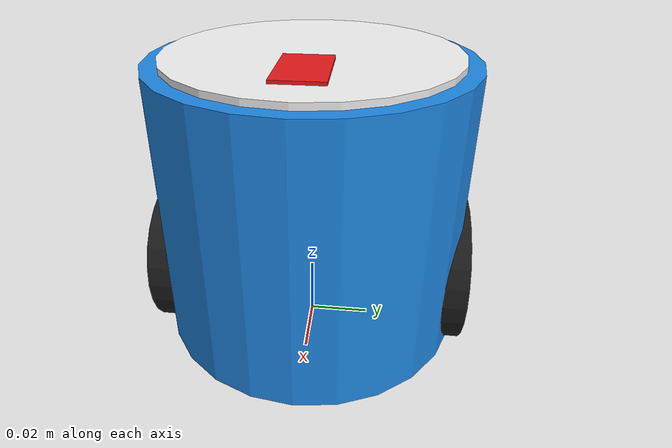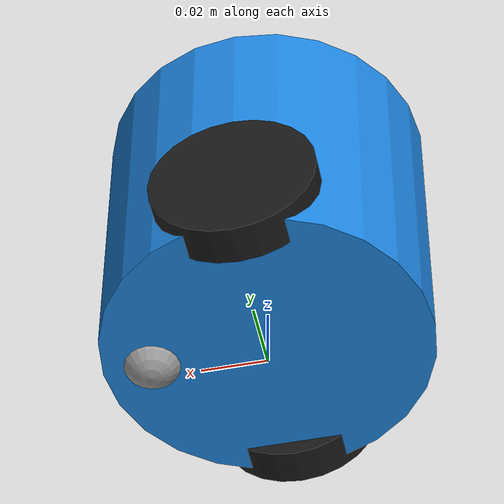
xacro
<?xml version="1.0"?>
<robot xmlns:xacro="http://www.ros.org/wiki/xacro" name="ssl_differential_robot">

  <!-- Arguments -->
  <xacro:arg name="enable_camera" default="false"/>

  <!-- Include component files -->
  <xacro:include filename="$(find ssl_robot_description)/urdf/chassis.xacro"/>
  <xacro:include filename="$(find ssl_robot_description)/urdf/wheels.xacro"/>
  <xacro:include filename="$(find ssl_robot_description)/urdf/sensors.xacro"/>
  <xacro:include filename="$(find ssl_robot_description)/urdf/gazebo.xacro"/>

</robot>

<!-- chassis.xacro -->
<robot xmlns:xacro="http://www.ros.org/wiki/xacro">

  <!-- Physical Properties from Research Proposal -->
  <xacro:property name="chassis_radius" value="0.050"/>  <!-- 100mm diameter -->
  <xacro:property name="chassis_height" value="0.090"/>  <!-- 90mm cylinder height + ground clearance -->
  <xacro:property name="chassis_mass" value="0.400"/>    <!-- 400g PLA Chassis + Pico + Battery -->

  <!-- Base footprint: Projection on the ground plane -->
  <link name="base_footprint"/>

  <joint name="base_joint" type="fixed">
    <parent link="base_footprint"/>
    <child link="base_link"/>
    <origin xyz="0 0 0.025" rpy="0 0 0"/> <!-- Axle center at z = 25mm (wheel radius) -->
  </joint>

  <!-- Base Link: Axle center is the origin (0, 0, 0) -->
  <link name="base_link">
    <visual>
      <!-- Cylindrical open-top chassis shell -->
      <origin xyz="0 0 0.025" rpy="0 0 0"/>
      <geometry>
        <cylinder radius="${chassis_radius}" length="${chassis_height}"/>
      </geometry>
      <material name="pla_cyan">
        <color rgba="0.12 0.53 0.89 0.95"/>
      </material>
    </visual>

    <!-- Top plate mounting sigil for overhead tracking camera -->
    <visual>
      <origin xyz="0 0 ${chassis_height/2 + 0.026}" rpy="0 0 0"/>
      <geometry>
        <cylinder radius="0.045" length="0.002"/>
      </geometry>
      <material name="sigil_plate">
        <color rgba="0.95 0.95 0.95 1.0"/>
      </material>
    </visual>

    <!-- Visual tracking pattern / orientation mark on top -->
    <visual>
      <origin xyz="0.020 0 ${chassis_height/2 + 0.027}" rpy="0 0 0"/>
      <geometry>
        <box size="0.025 0.015 0.002"/>
      </geometry>
      <material name="sigil_direction_marker">
        <color rgba="0.9 0.1 0.1 1.0"/>
      </material>
    </visual>

    <collision>
      <origin xyz="0 0 0.025" rpy="0 0 0"/>
      <geometry>
        <cylinder radius="${chassis_radius}" length="${chassis_height}"/>
      </geometry>
    </collision>

    <inertial>
      <origin xyz="0 0 0.020" rpy="0 0 0"/>
      <mass value="${chassis_mass}"/>
      <inertia
        ixx="${(1.0/12.0) * chassis_mass * (3*chassis_radius*chassis_radius + chassis_height*chassis_height)}"
        ixy="0.0"
        ixz="0.0"
        iyy="${(1.0/12.0) * chassis_mass * (3*chassis_radius*chassis_radius + chassis_height*chassis_height)}"
        iyz="0.0"
        izz="${(1.0/2.0) * chassis_mass * (chassis_radius*chassis_radius)}"/>
    </inertial>
  </link>

</robot>

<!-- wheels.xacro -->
<robot xmlns:xacro="http://www.ros.org/wiki/xacro">

  <!-- Wheel Dimensions -->
  <xacro:property name="wheel_radius" value="0.025"/>       <!-- 50mm diameter -->
  <xacro:property name="wheel_width" value="0.012"/>        <!-- 12mm width -->
  <xacro:property name="wheel_separation" value="0.090"/>   <!-- 90mm track width -->
  <xacro:property name="wheel_mass" value="0.035"/>         <!-- 35g per wheel + motor hub -->

  <!-- Caster Dimensions -->
  <xacro:property name="caster_radius" value="0.010"/>
  <xacro:property name="caster_mass" value="0.015"/>
  <xacro:property name="caster_offset_x" value="0.035"/>    <!-- Front passive caster -->
  <xacro:property name="caster_offset_z" value="-0.015"/>   <!-- Bottom clearance alignment -->

  <!-- Wheel Macro -->
  <xacro:macro name="drive_wheel" params="prefix y_reflect">
    <link name="${prefix}_wheel_link">
      <visual>
        <origin xyz="0 0 0" rpy="${pi/2} 0 0"/>
        <geometry>
          <cylinder radius="${wheel_radius}" length="${wheel_width}"/>
        </geometry>
        <material name="rubber_black">
          <color rgba="0.1 0.1 0.1 1.0"/>
        </material>
      </visual>

      <collision>
        <origin xyz="0 0 0" rpy="${pi/2} 0 0"/>
        <geometry>
          <cylinder radius="${wheel_radius}" length="${wheel_width}"/>
        </geometry>
      </collision>

      <inertial>
        <origin xyz="0 0 0" rpy="${pi/2} 0 0"/>
        <mass value="${wheel_mass}"/>
        <inertia
          ixx="${(1.0/12.0) * wheel_mass * (3*wheel_radius*wheel_radius + wheel_width*wheel_width)}"
          ixy="0.0"
          ixz="0.0"
          iyy="${(1.0/12.0) * wheel_mass * (3*wheel_radius*wheel_radius + wheel_width*wheel_width)}"
          iyz="0.0"
          izz="${(1.0/2.0) * wheel_mass * (wheel_radius*wheel_radius)}"/>
      </inertial>
    </link>

    <joint name="${prefix}_wheel_joint" type="continuous">
      <parent link="base_link"/>
      <child link="${prefix}_wheel_link"/>
      <origin xyz="0 ${y_reflect * wheel_separation / 2.0} 0" rpy="0 0 0"/>
      <axis xyz="0 1 0"/>
    </joint>
  </xacro:macro>

  <!-- Instantiate Left and Right Wheels -->
  <xacro:drive_wheel prefix="left" y_reflect="1"/>
  <xacro:drive_wheel prefix="right" y_reflect="-1"/>

  <!-- Front Passive Caster Wheel -->
  <link name="caster_wheel_link">
    <visual>
      <origin xyz="0 0 0" rpy="0 0 0"/>
      <geometry>
        <sphere radius="${caster_radius}"/>
      </geometry>
      <material name="metal_grey">
        <color rgba="0.6 0.6 0.6 1.0"/>
      </material>
    </visual>

    <collision>
      <origin xyz="0 0 0" rpy="0 0 0"/>
      <geometry>
        <sphere radius="${caster_radius}"/>
      </geometry>
    </collision>

    <inertial>
      <origin xyz="0 0 0" rpy="0 0 0"/>
      <mass value="${caster_mass}"/>
      <inertia
        ixx="${(2.0/5.0) * caster_mass * caster_radius * caster_radius}"
        ixy="0.0"
        ixz="0.0"
        iyy="${(2.0/5.0) * caster_mass * caster_radius * caster_radius}"
        iyz="0.0"
        izz="${(2.0/5.0) * caster_mass * caster_radius * caster_radius}"/>
    </inertial>
  </link>

  <joint name="caster_wheel_joint" type="fixed">
    <parent link="base_link"/>
    <child link="caster_wheel_link"/>
    <origin xyz="${caster_offset_x} 0 ${caster_offset_z}" rpy="0 0 0"/>
  </joint>

</robot>

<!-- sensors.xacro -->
<robot xmlns:xacro="http://www.ros.org/wiki/xacro">

  <!-- MPU6050 IMU Sensor Frame                     -->
  <!-- Centered exactly at axle line (r_offset = 0) -->
  <!-- eliminates centrifugal / centripetal offset -->
  <link name="imu_link">
    <visual>
      <origin xyz="0 0 0" rpy="0 0 0"/>
      <geometry>
        <box size="0.015 0.020 0.003"/> <!-- GY-521 PCB Dimensions -->
      </geometry>
      <material name="pcb_blue">
        <color rgba="0.1 0.2 0.8 1.0"/>
      </material>
    </visual>
    <inertial>
      <origin xyz="0 0 0" rpy="0 0 0"/>
      <mass value="0.005"/>
      <inertia ixx="1e-6" ixy="0" ixz="0" iyy="1e-6" iyz="0" izz="1e-6"/>
    </inertial>
  </link>

  <joint name="imu_joint" type="fixed">
    <parent link="base_link"/>
    <child link="imu_link"/>
    <!-- Positioned on the chassis bottom floor directly between wheel axles -->
    <origin xyz="0 0 0.005" rpy="0 0 0"/>
  </joint>

  <!-- Overhead Tracking Target Frame (Sigil)     -->
  <link name="tracking_sigil_link">
    <inertial>
      <origin xyz="0 0 0" rpy="0 0 0"/>
      <mass value="0.001"/>
      <inertia ixx="1e-7" ixy="0" ixz="0" iyy="1e-7" iyz="0" izz="1e-7"/>
    </inertial>
  </link>

  <joint name="tracking_sigil_joint" type="fixed">
    <parent link="base_link"/>
    <child link="tracking_sigil_link"/>
    <origin xyz="0 0 0.070" rpy="0 0 0"/>
  </joint>

  <!-- Room for Onboard/Overhead Camera Option    -->
  <!-- Can be enabled via use_camera argument     -->
  <xacro:arg name="enable_camera" default="false"/>

  <xacro:if value="$(arg enable_camera)">
    <link name="camera_link">
      <visual>
        <origin xyz="0 0 0" rpy="0 0 0"/>
        <geometry>
          <box size="0.015 0.025 0.015"/>
        </geometry>
        <material name="camera_black">
          <color rgba="0.05 0.05 0.05 1.0"/>
        </material>
      </visual>
      <inertial>
        <mass value="0.010"/>
        <inertia ixx="1e-6" ixy="0" ixz="0" iyy="1e-6" iyz="0" izz="1e-6"/>
      </inertial>
    </link>

    <joint name="camera_joint" type="fixed">
      <parent link="base_link"/>
      <child link="camera_link"/>
      <origin xyz="0.045 0 0.060" rpy="0 0 0"/>
    </joint>
  </xacro:if>

</robot>
